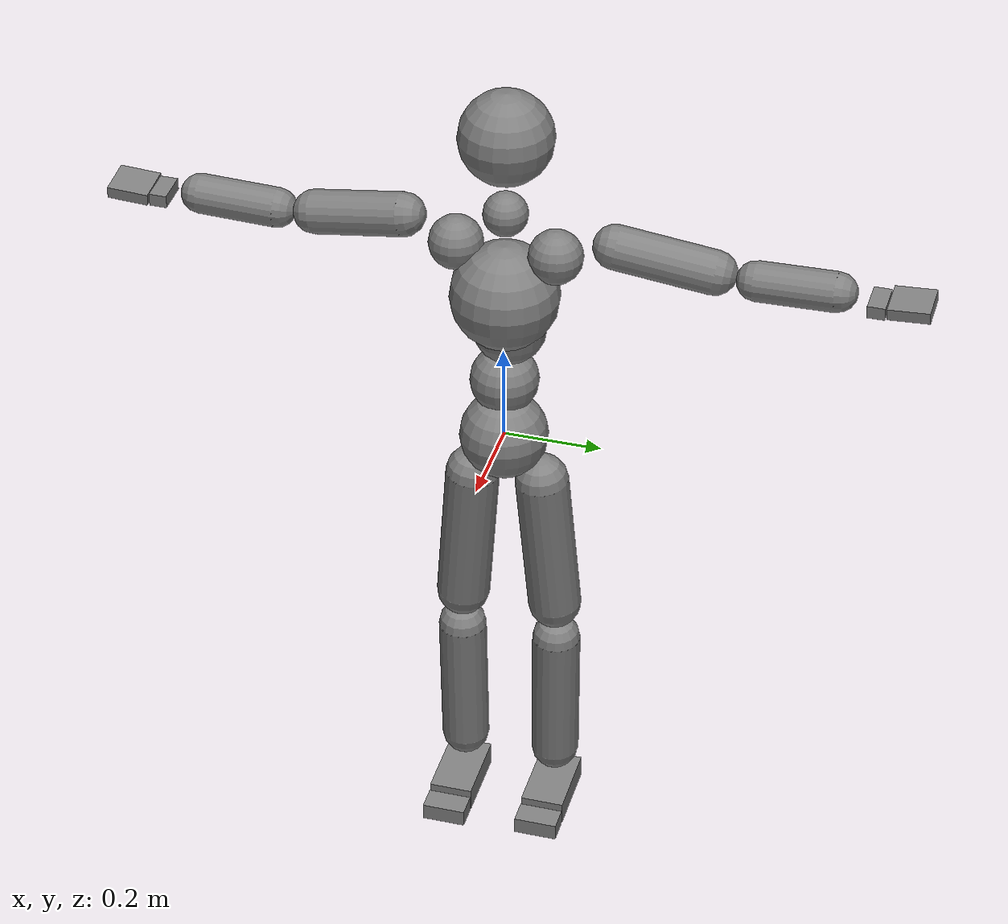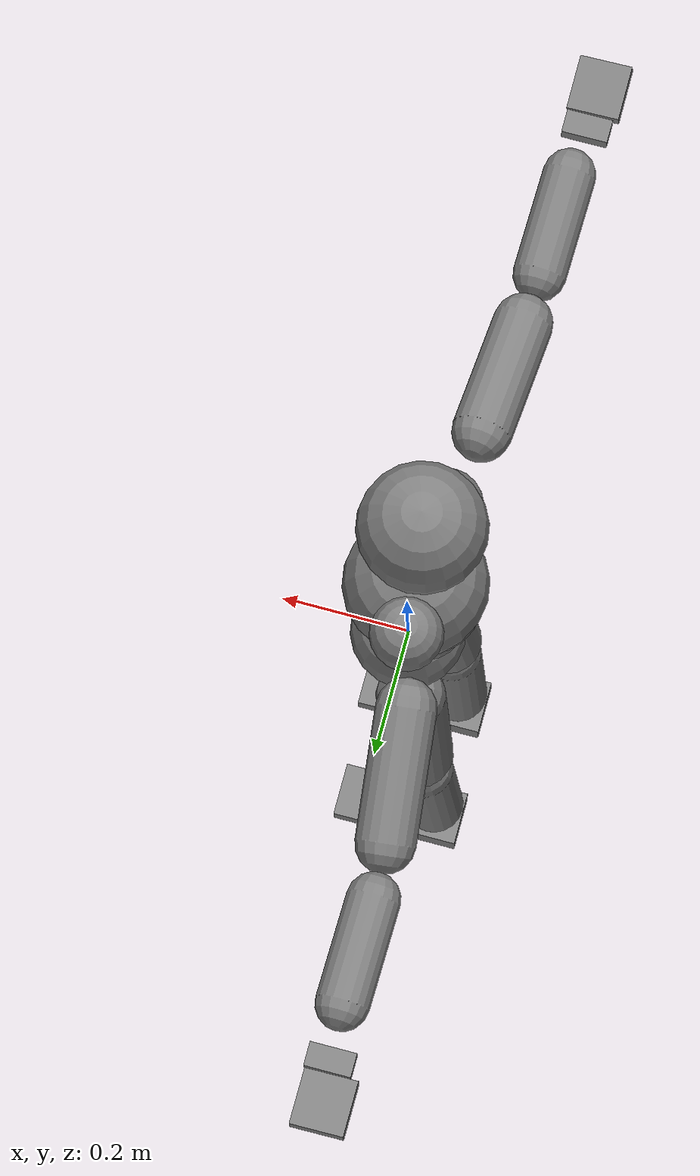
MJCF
<mujoco model="smpl_yogi03596_v2">
  <compiler coordinate="local" />
  <worldbody>
    <body name="Pelvis" pos="0 0 0">
      <geom type="sphere" contype="1" conaffinity="1" density="4517.248064" size="0.090000" pos="0.000000 0.000000 0.000000" condim="1" friction="1.0 0.05 0.05" solimp=".9 .99 .003" solref=".015 1" />

      <body name="L_Hip" pos="-0.02114269 0.07090967 -0.08996430">
        <joint name="L_Hip_x" type="hinge" pos="0 0 0" axis="1 0 0" actuatorfrcrange="-300 300" stiffness="500" damping="50" armature="0.02" range="-30 90" limited="true" solimplimit="0 .99 .01" />
        <joint name="L_Hip_y" type="hinge" pos="0 0 0" axis="0 1 0" actuatorfrcrange="-300 300" stiffness="500" damping="50" armature="0.02" range="-140 60" limited="true" solimplimit="0 .99 .01" />
        <joint name="L_Hip_z" type="hinge" pos="0 0 0" axis="0 0 1" actuatorfrcrange="-300 300" stiffness="500" damping="50" armature="0.02" range="-35 60" limited="true" solimplimit="0 .99 .01" />
        <geom type="capsule" contype="1" conaffinity="1" density="2400.551220" fromto="-0.001687 0.002044 -0.028149 -0.021204 0.025689 -0.353878" size="0.055000" condim="1" friction="1.0 0.05 0.05" solimp=".9 .99 .003" solref=".015 1" />

        <body name="L_Knee" pos="-0.02409478 0.02919196 -0.40213404">
          <joint name="L_Knee_x" type="hinge" pos="0 0 0" axis="1 0 0" actuatorfrcrange="-200 200" stiffness="500" damping="50" armature="0.02" range="-50 30" limited="true" solimplimit="0 .99 .01" />
          <joint name="L_Knee_y" type="hinge" pos="0 0 0" axis="0 1 0" actuatorfrcrange="-200 200" stiffness="500" damping="50" armature="0.02" range="-5 160" limited="true" solimplimit="0 .99 .01" />
          <joint name="L_Knee_z" type="hinge" pos="0 0 0" axis="0 0 1" actuatorfrcrange="-200 200" stiffness="500" damping="50" armature="0.02" range="-40 40" limited="true" solimplimit="0 .99 .01" />
          <geom type="capsule" contype="1" conaffinity="1" density="1019.027635" fromto="-0.002679 -0.000865 -0.049718 -0.019652 -0.006348 -0.364591" size="0.050000" condim="1" friction="1.0 0.05 0.05" solimp=".9 .99 .003" solref=".015 1" />

          <body name="L_Ankle" pos="-0.02233149 -0.00721307 -0.41430876">
            <joint name="L_Ankle_x" type="hinge" pos="0 0 0" axis="1 0 0" actuatorfrcrange="-100 100" stiffness="400" damping="40" armature="0.02" range="-30 30" limited="true" solimplimit="0 .99 .01" />
            <joint name="L_Ankle_y" type="hinge" pos="0 0 0" axis="0 1 0" actuatorfrcrange="-100 100" stiffness="400" damping="40" armature="0.02" range="-55 75" limited="true" solimplimit="0 .99 .01" />
            <joint name="L_Ankle_z" type="hinge" pos="0 0 0" axis="0 0 1" actuatorfrcrange="-100 100" stiffness="400" damping="40" armature="0.02" range="-40 40" limited="true" solimplimit="0 .99 .01" />
            <geom type="box" contype="1" conaffinity="1" density="916.293943" pos="0.034600 0.002400 -0.043088" size="0.080000 0.045000 0.025000" quat="1.000000 0.000000 0.000000 0.000000" condim="1" friction="1.0 0.05 0.05" solimp=".9 .99 .003" solref=".015 1" />

            <body name="L_Toe" pos="0.11634662 0.02065442 -0.04803407">
              <joint name="L_Toe_x" type="hinge" pos="0 0 0" axis="1 0 0" actuatorfrcrange="-20 20" stiffness="200" damping="20" armature="0.02" range="-30 30" limited="true" solimplimit="0 .99 .01" />
              <joint name="L_Toe_y" type="hinge" pos="0 0 0" axis="0 1 0" actuatorfrcrange="-20 20" stiffness="200" damping="20" armature="0.02" range="-60 60" limited="true" solimplimit="0 .99 .01" />
              <joint name="L_Toe_z" type="hinge" pos="0 0 0" axis="0 0 1" actuatorfrcrange="-20 20" stiffness="200" damping="20" armature="0.02" range="-30 30" limited="true" solimplimit="0 .99 .01" />
              <geom type="box" contype="1" conaffinity="1" density="1016.083805" pos="0.028153 -0.018254 -0.000954" size="0.025000 0.045000 0.018000" quat="1.000000 0.000000 0.000000 0.000000" condim="1" friction="1.0 0.05 0.05" solimp=".9 .99 .003" solref=".015 1" />
            </body>
          </body>
        </body>
      </body>

      <body name="R_Hip" pos="-0.02197685 -0.07039558 -0.09734877">
        <joint name="R_Hip_x" type="hinge" pos="0 0 0" axis="1 0 0" actuatorfrcrange="-300 300" stiffness="500" damping="50" armature="0.02" range="-90 30" limited="true" solimplimit="0 .99 .01" />
        <joint name="R_Hip_y" type="hinge" pos="0 0 0" axis="0 1 0" actuatorfrcrange="-300 300" stiffness="500" damping="50" armature="0.02" range="-140 60" limited="true" solimplimit="0 .99 .01" />
        <joint name="R_Hip_z" type="hinge" pos="0 0 0" axis="0 0 1" actuatorfrcrange="-300 300" stiffness="500" damping="50" armature="0.02" range="-60 35" limited="true" solimplimit="0 .99 .01" />
        <geom type="capsule" contype="1" conaffinity="1" density="2351.446719" fromto="-0.001292 -0.002285 -0.027868 -0.016241 -0.028725 -0.350346" size="0.055000" condim="1" friction="1.0 0.05 0.05" solimp=".9 .99 .003" solref=".015 1" />

        <body name="R_Knee" pos="-0.01845515 -0.03264132 -0.39812063">
          <joint name="R_Knee_x" type="hinge" pos="0 0 0" axis="1 0 0" actuatorfrcrange="-200 200" stiffness="500" damping="50" armature="0.02" range="-30 50" limited="true" solimplimit="0 .99 .01" />
          <joint name="R_Knee_y" type="hinge" pos="0 0 0" axis="0 1 0" actuatorfrcrange="-200 200" stiffness="500" damping="50" armature="0.02" range="-5 160" limited="true" solimplimit="0 .99 .01" />
          <joint name="R_Knee_z" type="hinge" pos="0 0 0" axis="0 0 1" actuatorfrcrange="-200 200" stiffness="500" damping="50" armature="0.02" range="-40 40" limited="true" solimplimit="0 .99 .01" />
          <geom type="capsule" contype="1" conaffinity="1" density="1017.376698" fromto="-0.002009 0.000123 -0.048417 -0.014737 0.000903 -0.355058" size="0.050000" condim="1" friction="1.0 0.05 0.05" solimp=".9 .99 .003" solref=".015 1" />

          <body name="R_Ankle" pos="-0.01674610 0.00102701 -0.40347589">
            <joint name="R_Ankle_x" type="hinge" pos="0 0 0" axis="1 0 0" actuatorfrcrange="-100 100" stiffness="400" damping="40" armature="0.02" range="-30 30" limited="true" solimplimit="0 .99 .01" />
            <joint name="R_Ankle_y" type="hinge" pos="0 0 0" axis="0 1 0" actuatorfrcrange="-100 100" stiffness="400" damping="40" armature="0.02" range="-55 75" limited="true" solimplimit="0 .99 .01" />
            <joint name="R_Ankle_z" type="hinge" pos="0 0 0" axis="0 0 1" actuatorfrcrange="-100 100" stiffness="400" damping="40" armature="0.02" range="-40 40" limited="true" solimplimit="0 .99 .01" />
            <geom type="box" contype="1" conaffinity="1" density="942.251170" pos="0.034600 -0.002400 -0.050526" size="0.080000 0.045000 0.025000" quat="1.000000 0.000000 0.000000 0.000000" condim="1" friction="1.0 0.05 0.05" solimp=".9 .99 .003" solref=".015 1" />

            <body name="R_Toe" pos="0.10788097 -0.01586039 -0.05221897">
              <joint name="R_Toe_x" type="hinge" pos="0 0 0" axis="1 0 0" actuatorfrcrange="-20 20" stiffness="200" damping="20" armature="0.02" range="-30 30" limited="true" solimplimit="0 .99 .01" />
              <joint name="R_Toe_y" type="hinge" pos="0 0 0" axis="0 1 0" actuatorfrcrange="-20 20" stiffness="200" damping="20" armature="0.02" range="-60 60" limited="true" solimplimit="0 .99 .01" />
              <joint name="R_Toe_z" type="hinge" pos="0 0 0" axis="0 0 1" actuatorfrcrange="-20 20" stiffness="200" damping="20" armature="0.02" range="-30 30" limited="true" solimplimit="0 .99 .01" />
              <geom type="box" contype="1" conaffinity="1" density="1002.556440" pos="0.036619 0.013460 -0.004207" size="0.025000 0.045000 0.018000" quat="1.000000 0.000000 0.000000 0.000000" condim="1" friction="1.0 0.05 0.05" solimp=".9 .99 .003" solref=".015 1" />
            </body>
          </body>
        </body>
      </body>

      <body name="Torso" pos="-0.02444871 -0.00585591 0.10313670">
        <joint name="Torso_x" type="hinge" pos="0 0 0" axis="1 0 0" actuatorfrcrange="-300 300" stiffness="1000" damping="100" armature="0.02" range="-60 60" limited="true" solimplimit="0 .99 .01" />
        <joint name="Torso_y" type="hinge" pos="0 0 0" axis="0 1 0" actuatorfrcrange="-300 300" stiffness="1000" damping="100" armature="0.02" range="-60 90" limited="true" solimplimit="0 .99 .01" />
        <joint name="Torso_z" type="hinge" pos="0 0 0" axis="0 0 1" actuatorfrcrange="-300 300" stiffness="1000" damping="100" armature="0.02" range="-50 50" limited="true" solimplimit="0 .99 .01" />
        <geom type="sphere" contype="1" conaffinity="1" density="3644.512090" size="0.070000" pos="0.000110 0.000550 0.013520" condim="1" friction="1.0 0.05 0.05" solimp=".9 .99 .003" solref=".015 1" />

        <body name="Spine" pos="-0.01402775 0.00729146 0.13184223">
          <joint name="Spine_x" type="hinge" pos="0 0 0" axis="1 0 0" actuatorfrcrange="-200 200" stiffness="1000" damping="100" armature="0.02" range="-60 60" limited="true" solimplimit="0 .99 .01" />
          <joint name="Spine_y" type="hinge" pos="0 0 0" axis="0 1 0" actuatorfrcrange="-200 200" stiffness="1000" damping="100" armature="0.02" range="-60 90" limited="true" solimplimit="0 .99 .01" />
          <joint name="Spine_z" type="hinge" pos="0 0 0" axis="0 0 1" actuatorfrcrange="-200 200" stiffness="1000" damping="100" armature="0.02" range="-50 50" limited="true" solimplimit="0 .99 .01" />
          <geom type="sphere" contype="1" conaffinity="1" density="1607.142806" size="0.075000" pos="0.000000 0.000000 0.000000" condim="1" friction="1.0 0.05 0.05" solimp=".9 .99 .003" solref=".015 1" />

          <body name="Chest" pos="0.03259007 -0.00285193 0.05058806">
            <joint name="Chest_x" type="hinge" pos="0 0 0" axis="1 0 0" actuatorfrcrange="-150 150" stiffness="1000" damping="100" armature="0.02" range="-60 60" limited="true" solimplimit="0 .99 .01" />
            <joint name="Chest_y" type="hinge" pos="0 0 0" axis="0 1 0" actuatorfrcrange="-150 150" stiffness="1000" damping="100" armature="0.02" range="-60 90" limited="true" solimplimit="0 .99 .01" />
            <joint name="Chest_z" type="hinge" pos="0 0 0" axis="0 0 1" actuatorfrcrange="-150 150" stiffness="1000" damping="100" armature="0.02" range="-50 50" limited="true" solimplimit="0 .99 .01" />
            <geom type="sphere" contype="1" conaffinity="1" density="2143.416640" size="0.110000" pos="-0.008000 0.000000 0.040000" condim="1" friction="1.0 0.05 0.05" solimp=".9 .99 .003" solref=".015 1" />

            <body name="Neck" pos="-0.03630985 -0.00481643 0.20377569">
              <joint name="Neck_x" type="hinge" pos="0 0 0" axis="1 0 0" actuatorfrcrange="-75 75" stiffness="500" damping="50" armature="0.02" range="-50 50" limited="true" solimplimit="0 .99 .01" />
              <joint name="Neck_y" type="hinge" pos="0 0 0" axis="0 1 0" actuatorfrcrange="-75 75" stiffness="500" damping="50" armature="0.02" range="-55 60" limited="true" solimplimit="0 .99 .01" />
              <joint name="Neck_z" type="hinge" pos="0 0 0" axis="0 0 1" actuatorfrcrange="-75 75" stiffness="500" damping="50" armature="0.02" range="-45 45" limited="true" solimplimit="0 .99 .01" />
              <geom type="sphere" contype="1" conaffinity="1" density="2204.617563" size="0.045000" pos="0.022363 0.004893 0.020695" condim="1" friction="1.0 0.05 0.05" solimp=".9 .99 .003" solref=".015 1" />

              <body name="Head" pos="0.02606918 0.00859425 0.14355507">
                <joint name="Head_x" type="hinge" pos="0 0 0" axis="1 0 0" actuatorfrcrange="-25 25" stiffness="200" damping="20" armature="0.02" range="-50 50" limited="true" solimplimit="0 .99 .01" />
                <joint name="Head_y" type="hinge" pos="0 0 0" axis="0 1 0" actuatorfrcrange="-25 25" stiffness="200" damping="20" armature="0.02" range="-40 60" limited="true" solimplimit="0 .99 .01" />
                <joint name="Head_z" type="hinge" pos="0 0 0" axis="0 0 1" actuatorfrcrange="-25 25" stiffness="200" damping="20" armature="0.02" range="-45 45" limited="true" solimplimit="0 .99 .01" />
                <geom type="sphere" contype="1" conaffinity="1" density="1184.304577" size="0.095000" pos="-0.009170 -0.003631 0.046619" condim="1" friction="1.0 0.05 0.05" solimp=".9 .99 .003" solref=".015 1" />
              </body>
            </body>

            <body name="L_Thorax" pos="-0.01627818 0.05315831 0.12313852">
              <joint name="L_Thorax_x" type="hinge" pos="0 0 0" axis="1 0 0" actuatorfrcrange="-200 200" stiffness="500" damping="50" armature="0.02" range="-40 50" limited="true" solimplimit="0 .99 .01" />
              <joint name="L_Thorax_y" type="hinge" pos="0 0 0" axis="0 1 0" actuatorfrcrange="-200 200" stiffness="500" damping="50" armature="0.02" range="-35 30" limited="true" solimplimit="0 .99 .01" />
              <joint name="L_Thorax_z" type="hinge" pos="0 0 0" axis="0 0 1" actuatorfrcrange="-200 200" stiffness="500" damping="50" armature="0.02" range="-60 30" limited="true" solimplimit="0 .99 .01" />
              <geom type="sphere" contype="1" conaffinity="1" density="1086.592780" size="0.055000" pos="-0.004450 0.045500 0.015250" condim="1" friction="1.0 0.05 0.05" solimp=".9 .99 .003" solref=".015 1" />

              <body name="L_Shoulder" pos="-0.02794132 0.09735093 0.05055803">
                <joint name="L_Shoulder_x" type="hinge" pos="0 0 0" axis="1 0 0" actuatorfrcrange="-150 150" stiffness="400" damping="40" armature="0.02" range="-135 90" limited="true" solimplimit="0 .99 .01" />
                <joint name="L_Shoulder_y" type="hinge" pos="0 0 0" axis="0 1 0" actuatorfrcrange="-150 150" stiffness="400" damping="40" armature="0.02" range="-90 90" limited="true" solimplimit="0 .99 .01" />
                <joint name="L_Shoulder_z" type="hinge" pos="0 0 0" axis="0 0 1" actuatorfrcrange="-150 150" stiffness="400" damping="40" armature="0.02" range="-160 60" limited="true" solimplimit="0 .99 .01" />
                <geom type="capsule" contype="1" conaffinity="1" density="1539.917418" fromto="-0.006302 0.059450 -0.011562 -0.026785 0.252663 -0.049137" size="0.045000" condim="1" friction="1.0 0.05 0.05" solimp=".9 .99 .003" solref=".015 1" />

                <body name="L_Elbow" pos="-0.03151154 0.29725051 -0.05780786">
                  <joint name="L_Elbow_x" type="hinge" pos="0 0 0" axis="1 0 0" actuatorfrcrange="-100 100" stiffness="300" damping="30" armature="0.02" range="-30 70" limited="true" solimplimit="0 .99 .01" />
                  <joint name="L_Elbow_y" type="hinge" pos="0 0 0" axis="0 1 0" actuatorfrcrange="-100 100" stiffness="300" damping="30" armature="0.02" range="-70 70" limited="true" solimplimit="0 .99 .01" />
                  <joint name="L_Elbow_z" type="hinge" pos="0 0 0" axis="0 0 1" actuatorfrcrange="-100 100" stiffness="300" damping="30" armature="0.02" range="-160 20" limited="true" solimplimit="0 .99 .01" />
                  <geom type="capsule" contype="1" conaffinity="1" density="906.020415" fromto="0.000677 0.036844 0.001260 0.003667 0.196541 0.006716" size="0.040000" condim="1" friction="1.0 0.05 0.05" solimp=".9 .99 .003" solref=".015 1" />

                  <body name="L_Wrist" pos="0.00450879 0.24562899 0.00839450">
                    <joint name="L_Wrist_x" type="hinge" pos="0 0 0" axis="1 0 0" actuatorfrcrange="-30 30" stiffness="200" damping="20" armature="0.02" range="-90 90" limited="true" solimplimit="0 .99 .01" />
                    <joint name="L_Wrist_y" type="hinge" pos="0 0 0" axis="0 1 0" actuatorfrcrange="-30 30" stiffness="200" damping="20" armature="0.02" range="-90 90" limited="true" solimplimit="0 .99 .01" />
                    <joint name="L_Wrist_z" type="hinge" pos="0 0 0" axis="0 0 1" actuatorfrcrange="-30 30" stiffness="200" damping="20" armature="0.02" range="-60 60" limited="true" solimplimit="0 .99 .01" />
                    <geom type="box" contype="1" conaffinity="1" density="3900.231538" pos="-0.005000 0.032000 -0.015768" size="0.035000 0.018000 0.013000" quat="1.000000 0.000000 0.000000 0.000000" condim="1" friction="1.0 0.05 0.05" solimp=".9 .99 .003" solref=".015 1" />

                    <body name="L_Hand" pos="-0.01247289 0.10692025 -0.01525343">
                      <joint name="L_Hand_x" type="hinge" pos="0 0 0" axis="1 0 0" actuatorfrcrange="-15 15" stiffness="100" damping="10" armature="0.02" range="-110 90" limited="true" solimplimit="0 .99 .01" />
                      <joint name="L_Hand_y" type="hinge" pos="0 0 0" axis="0 1 0" actuatorfrcrange="-15 15" stiffness="100" damping="10" armature="0.02" range="-90 90" limited="true" solimplimit="0 .99 .01" />
                      <joint name="L_Hand_z" type="hinge" pos="0 0 0" axis="0 0 1" actuatorfrcrange="-15 15" stiffness="100" damping="10" armature="0.02" range="-90 90" limited="true" solimplimit="0 .99 .01" />
                      <geom type="box" contype="1" conaffinity="1" density="695.197451" pos="-0.000327 -0.012120 0.002739" size="0.040000 0.042000 0.012000" quat="0.999262 0.030625 0.023186 0.000000" condim="1" friction="1.0 0.05 0.05" solimp=".9 .99 .003" solref=".015 1" />
                    </body>
                  </body>
                </body>
              </body>
            </body>

            <body name="R_Thorax" pos="-0.02252732 -0.05631320 0.11763799">
              <joint name="R_Thorax_x" type="hinge" pos="0 0 0" axis="1 0 0" actuatorfrcrange="-200 200" stiffness="500" damping="50" armature="0.02" range="-50 40" limited="true" solimplimit="0 .99 .01" />
              <joint name="R_Thorax_y" type="hinge" pos="0 0 0" axis="0 1 0" actuatorfrcrange="-200 200" stiffness="500" damping="50" armature="0.02" range="-35 30" limited="true" solimplimit="0 .99 .01" />
              <joint name="R_Thorax_z" type="hinge" pos="0 0 0" axis="0 0 1" actuatorfrcrange="-200 200" stiffness="500" damping="50" armature="0.02" range="-30 60" limited="true" solimplimit="0 .99 .01" />
              <geom type="sphere" contype="1" conaffinity="1" density="1374.324399" size="0.055000" pos="-0.004550 -0.048000 0.016300" condim="1" friction="1.0 0.05 0.05" solimp=".9 .99 .003" solref=".015 1" />

              <body name="R_Shoulder" pos="-0.02342355 -0.10364052 0.05567164">
                <joint name="R_Shoulder_x" type="hinge" pos="0 0 0" axis="1 0 0" actuatorfrcrange="-150 150" stiffness="400" damping="40" armature="0.02" range="-90 135" limited="true" solimplimit="0 .99 .01" />
                <joint name="R_Shoulder_y" type="hinge" pos="0 0 0" axis="0 1 0" actuatorfrcrange="-150 150" stiffness="400" damping="40" armature="0.02" range="-90 90" limited="true" solimplimit="0 .99 .01" />
                <joint name="R_Shoulder_z" type="hinge" pos="0 0 0" axis="0 0 1" actuatorfrcrange="-150 150" stiffness="400" damping="40" armature="0.02" range="-60 160" limited="true" solimplimit="0 .99 .01" />
                <geom type="capsule" contype="1" conaffinity="1" density="1521.314735" fromto="-0.004334 -0.057355 -0.010731 -0.018423 -0.243758 -0.045608" size="0.045000" condim="1" friction="1.0 0.05 0.05" solimp=".9 .99 .003" solref=".015 1" />

                <body name="R_Elbow" pos="-0.02167443 -0.28677391 -0.05365671">
                  <joint name="R_Elbow_x" type="hinge" pos="0 0 0" axis="1 0 0" actuatorfrcrange="-100 100" stiffness="300" damping="30" armature="0.02" range="-70 30" limited="true" solimplimit="0 .99 .01" />
                  <joint name="R_Elbow_y" type="hinge" pos="0 0 0" axis="0 1 0" actuatorfrcrange="-100 100" stiffness="300" damping="30" armature="0.02" range="-70 70" limited="true" solimplimit="0 .99 .01" />
                  <joint name="R_Elbow_z" type="hinge" pos="0 0 0" axis="0 0 1" actuatorfrcrange="-100 100" stiffness="300" damping="30" armature="0.02" range="-20 160" limited="true" solimplimit="0 .99 .01" />
                  <geom type="capsule" contype="1" conaffinity="1" density="922.356045" fromto="-0.000883 -0.037273 0.000696 -0.004709 -0.198786 0.003712" size="0.040000" condim="1" friction="1.0 0.05 0.05" solimp=".9 .99 .003" solref=".015 1" />

                  <body name="R_Wrist" pos="-0.00588651 -0.24848250 0.00463916">
                    <joint name="R_Wrist_x" type="hinge" pos="0 0 0" axis="1 0 0" actuatorfrcrange="-30 30" stiffness="200" damping="20" armature="0.02" range="-90 90" limited="true" solimplimit="0 .99 .01" />
                    <joint name="R_Wrist_y" type="hinge" pos="0 0 0" axis="0 1 0" actuatorfrcrange="-30 30" stiffness="200" damping="20" armature="0.02" range="-90 90" limited="true" solimplimit="0 .99 .01" />
                    <joint name="R_Wrist_z" type="hinge" pos="0 0 0" axis="0 0 1" actuatorfrcrange="-30 30" stiffness="200" damping="20" armature="0.02" range="-60 60" limited="true" solimplimit="0 .99 .01" />
                    <geom type="box" contype="1" conaffinity="1" density="3861.946540" pos="-0.005000 -0.032000 -0.015687" size="0.035000 0.018000 0.013000" quat="1.000000 0.000000 0.000000 0.000000" condim="1" friction="1.0 0.05 0.05" solimp=".9 .99 .003" solref=".015 1" />

                    <body name="R_Hand" pos="-0.01004543 -0.10522954 -0.01573075">
                      <joint name="R_Hand_x" type="hinge" pos="0 0 0" axis="1 0 0" actuatorfrcrange="-15 15" stiffness="100" damping="10" armature="0.02" range="-90 110" limited="true" solimplimit="0 .99 .01" />
                      <joint name="R_Hand_y" type="hinge" pos="0 0 0" axis="0 1 0" actuatorfrcrange="-15 15" stiffness="100" damping="10" armature="0.02" range="-90 90" limited="true" solimplimit="0 .99 .01" />
                      <joint name="R_Hand_z" type="hinge" pos="0 0 0" axis="0 0 1" actuatorfrcrange="-15 15" stiffness="100" damping="10" armature="0.02" range="-90 90" limited="true" solimplimit="0 .99 .01" />
                      <geom type="box" contype="1" conaffinity="1" density="699.299415" pos="0.001845 0.009830 0.002952" size="0.040000 0.042000 0.012000" quat="0.999230 -0.029136 0.026260 0.000000" condim="1" friction="1.0 0.05 0.05" solimp=".9 .99 .003" solref=".015 1" />
                    </body>
                  </body>
                </body>
              </body>
            </body>
          </body>
        </body>
      </body>
    <joint type="free" name="Pelvis" limited="false" actuatorfrclimited="false" /></body>
  </worldbody>

  <actuator>
    <motor name="L_Hip_x" joint="L_Hip_x" gear="300" />
    <motor name="L_Hip_y" joint="L_Hip_y" gear="300" />
    <motor name="L_Hip_z" joint="L_Hip_z" gear="300" />
    <motor name="L_Knee_x" joint="L_Knee_x" gear="200" />
    <motor name="L_Knee_y" joint="L_Knee_y" gear="200" />
    <motor name="L_Knee_z" joint="L_Knee_z" gear="200" />
    <motor name="L_Ankle_x" joint="L_Ankle_x" gear="100" />
    <motor name="L_Ankle_y" joint="L_Ankle_y" gear="100" />
    <motor name="L_Ankle_z" joint="L_Ankle_z" gear="100" />
    <motor name="L_Toe_x" joint="L_Toe_x" gear="20" />
    <motor name="L_Toe_y" joint="L_Toe_y" gear="20" />
    <motor name="L_Toe_z" joint="L_Toe_z" gear="20" />
    <motor name="R_Hip_x" joint="R_Hip_x" gear="300" />
    <motor name="R_Hip_y" joint="R_Hip_y" gear="300" />
    <motor name="R_Hip_z" joint="R_Hip_z" gear="300" />
    <motor name="R_Knee_x" joint="R_Knee_x" gear="200" />
    <motor name="R_Knee_y" joint="R_Knee_y" gear="200" />
    <motor name="R_Knee_z" joint="R_Knee_z" gear="200" />
    <motor name="R_Ankle_x" joint="R_Ankle_x" gear="100" />
    <motor name="R_Ankle_y" joint="R_Ankle_y" gear="100" />
    <motor name="R_Ankle_z" joint="R_Ankle_z" gear="100" />
    <motor name="R_Toe_x" joint="R_Toe_x" gear="20" />
    <motor name="R_Toe_y" joint="R_Toe_y" gear="20" />
    <motor name="R_Toe_z" joint="R_Toe_z" gear="20" />
    <motor name="Torso_x" joint="Torso_x" gear="300" />
    <motor name="Torso_y" joint="Torso_y" gear="300" />
    <motor name="Torso_z" joint="Torso_z" gear="300" />
    <motor name="Spine_x" joint="Spine_x" gear="200" />
    <motor name="Spine_y" joint="Spine_y" gear="200" />
    <motor name="Spine_z" joint="Spine_z" gear="200" />
    <motor name="Chest_x" joint="Chest_x" gear="150" />
    <motor name="Chest_y" joint="Chest_y" gear="150" />
    <motor name="Chest_z" joint="Chest_z" gear="150" />
    <motor name="Neck_x" joint="Neck_x" gear="75" />
    <motor name="Neck_y" joint="Neck_y" gear="75" />
    <motor name="Neck_z" joint="Neck_z" gear="75" />
    <motor name="Head_x" joint="Head_x" gear="25" />
    <motor name="Head_y" joint="Head_y" gear="25" />
    <motor name="Head_z" joint="Head_z" gear="25" />
    <motor name="L_Thorax_x" joint="L_Thorax_x" gear="200" />
    <motor name="L_Thorax_y" joint="L_Thorax_y" gear="200" />
    <motor name="L_Thorax_z" joint="L_Thorax_z" gear="200" />
    <motor name="L_Shoulder_x" joint="L_Shoulder_x" gear="150" />
    <motor name="L_Shoulder_y" joint="L_Shoulder_y" gear="150" />
    <motor name="L_Shoulder_z" joint="L_Shoulder_z" gear="150" />
    <motor name="L_Elbow_x" joint="L_Elbow_x" gear="100" />
    <motor name="L_Elbow_y" joint="L_Elbow_y" gear="100" />
    <motor name="L_Elbow_z" joint="L_Elbow_z" gear="100" />
    <motor name="L_Wrist_x" joint="L_Wrist_x" gear="30" />
    <motor name="L_Wrist_y" joint="L_Wrist_y" gear="30" />
    <motor name="L_Wrist_z" joint="L_Wrist_z" gear="30" />
    <motor name="L_Hand_x" joint="L_Hand_x" gear="15" />
    <motor name="L_Hand_y" joint="L_Hand_y" gear="15" />
    <motor name="L_Hand_z" joint="L_Hand_z" gear="15" />
    <motor name="R_Thorax_x" joint="R_Thorax_x" gear="200" />
    <motor name="R_Thorax_y" joint="R_Thorax_y" gear="200" />
    <motor name="R_Thorax_z" joint="R_Thorax_z" gear="200" />
    <motor name="R_Shoulder_x" joint="R_Shoulder_x" gear="150" />
    <motor name="R_Shoulder_y" joint="R_Shoulder_y" gear="150" />
    <motor name="R_Shoulder_z" joint="R_Shoulder_z" gear="150" />
    <motor name="R_Elbow_x" joint="R_Elbow_x" gear="100" />
    <motor name="R_Elbow_y" joint="R_Elbow_y" gear="100" />
    <motor name="R_Elbow_z" joint="R_Elbow_z" gear="100" />
    <motor name="R_Wrist_x" joint="R_Wrist_x" gear="30" />
    <motor name="R_Wrist_y" joint="R_Wrist_y" gear="30" />
    <motor name="R_Wrist_z" joint="R_Wrist_z" gear="30" />
    <motor name="R_Hand_x" joint="R_Hand_x" gear="15" />
    <motor name="R_Hand_y" joint="R_Hand_y" gear="15" />
    <motor name="R_Hand_z" joint="R_Hand_z" gear="15" />
  </actuator>
</mujoco>
